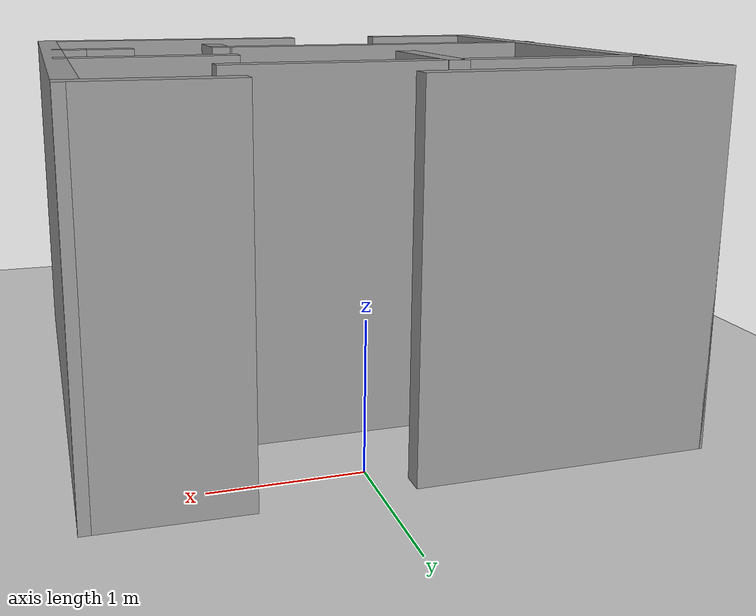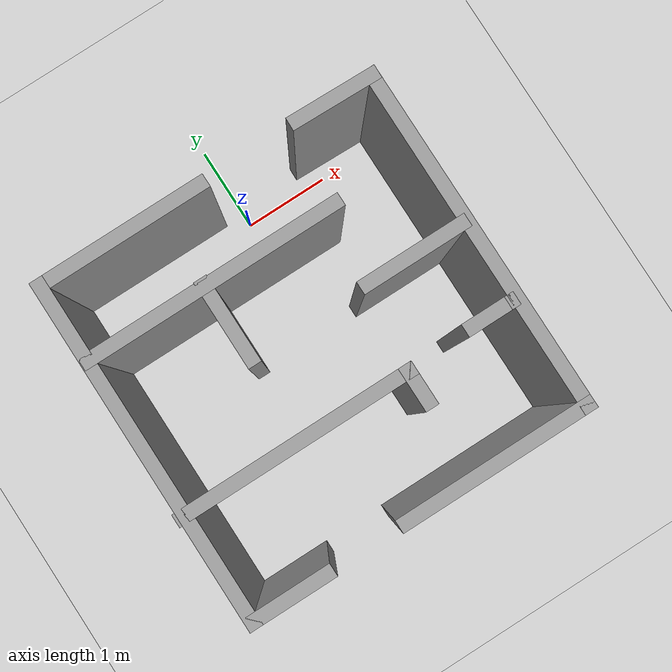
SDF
<sdf version="1.7">
 <world name="default">
  <light name="sun" type="directional">
   <pose>0 0 10 0 -0 0</pose>
   <diffuse>0.8 0.8 0.8 1</diffuse>
   <specular>0.2 0.2 0.2 1</specular>
   <attenuation>
    <range>1000</range>
    <constant>0.9</constant>
    <linear>0.01</linear>
    <quadratic>0.001</quadratic>
   </attenuation>
   <direction>-0.5 0.1 -0.9</direction>
   <spot><inner_angle>0</inner_angle><outer_angle>0</outer_angle><falloff>0</falloff></spot>
  </light>
  <model name="ground_plane">
   <static>1</static>
   <link name="link">
    <collision name="collision">
     <geometry><plane><normal>0 0 1</normal><size>100 100</size></plane></geometry>
     <surface><friction><ode><mu>100</mu><mu2>50</mu2></ode></friction></surface>
    </collision>
    <visual name="visual">
     <cast_shadows>0</cast_shadows>
     <geometry><plane><normal>0 0 1</normal><size>100 100</size></plane></geometry>
     <material>
      <script><uri>file://media/materials/scripts/gazebo.material</uri><name>Gazebo/Grey</name></script>
     </material>
    </visual>
   </link>
  </model>
  <gravity>0 0 -9.8</gravity>
  <magnetic_field>6e-06 2.3e-05 -4.2e-05</magnetic_field>
  <atmosphere type="adiabatic"/>
  <physics type="ode">
   <max_step_size>0.001</max_step_size>
   <real_time_factor>1</real_time_factor>
   <real_time_update_rate>1000</real_time_update_rate>
  </physics>
  <scene><ambient>0.4 0.4 0.4 1</ambient><background>0.7 0.7 0.7 1</background><shadows>1</shadows></scene>
  <audio><device>default</device></audio>
  <spherical_coordinates>
   <surface_model>EARTH_WGS84</surface_model>
   <latitude_deg>0</latitude_deg>
   <longitude_deg>0</longitude_deg>
   <elevation>0</elevation>
   <heading_deg>0</heading_deg>
  </spherical_coordinates>
  <model name="maze">
   <pose>0.254634 -1.22836 0 0 -0 0</pose>
   <link name="Wall_0">
    <collision name="Wall_0_Collision">
     <geometry><box><size>2 0.15 2.5</size></box></geometry>
     <pose>0 0 1.25 0 -0 0</pose>
    </collision>
    <visual name="Wall_0_Visual">
     <pose>0 0 1.25 0 -0 0</pose>
     <geometry><box><size>2 0.15 2.5</size></box></geometry>
     <material>
      <script><uri>file://media/materials/scripts/gazebo.material</uri><name>Gazebo/Grey</name></script>
      <ambient>1 1 1 1</ambient>
     </material>
     <meta><layer>0</layer></meta>
    </visual>
    <pose>-1.4925 1.4425 0 0 -0 0</pose>
   </link>
   <link name="Wall_10">
    <collision name="Wall_10_Collision">
     <geometry><box><size>1 0.15 2.5</size></box></geometry>
     <pose>0 0 1.25 0 -0 0</pose>
    </collision>
    <visual name="Wall_10_Visual">
     <pose>0 0 1.25 0 -0 0</pose>
     <geometry><box><size>1 0.15 2.5</size></box></geometry>
     <material>
      <script><uri>file://media/materials/scripts/gazebo.material</uri><name>Gazebo/Grey</name></script>
      <ambient>1 1 1 1</ambient>
     </material>
     <meta><layer>0</layer></meta>
    </visual>
    <pose>-1.9925 -2.4075 0 0 -0 0</pose>
   </link>
   <link name="Wall_14">
    <collision name="Wall_14_Collision">
     <geometry><box><size>2.25 0.15 2.5</size></box></geometry>
     <pose>0 0 1.25 0 -0 0</pose>
    </collision>
    <visual name="Wall_14_Visual">
     <pose>0 0 1.25 0 -0 0</pose>
     <geometry><box><size>2.25 0.15 2.5</size></box></geometry>
     <material>
      <script><uri>file://media/materials/scripts/gazebo.material</uri><name>Gazebo/Grey</name></script>
      <ambient>1 1 1 1</ambient>
     </material>
     <meta><layer>0</layer></meta>
    </visual>
    <pose>0.3825 -2.4075 0 0 -0 3.14159</pose>
   </link>
   <link name="Wall_16">
    <collision name="Wall_16_Collision">
     <geometry><box><size>3 0.15 2.5</size></box></geometry>
     <pose>0 0 1.25 0 -0 0</pose>
    </collision>
    <visual name="Wall_16_Visual">
     <pose>0 0 1.25 0 -0 0</pose>
     <geometry><box><size>3 0.15 2.5</size></box></geometry>
     <material>
      <script><uri>file://media/materials/scripts/gazebo.material</uri><name>Gazebo/Grey</name></script>
      <ambient>1 1 1 1</ambient>
     </material>
     <meta><layer>0</layer></meta>
    </visual>
    <pose>-0.9825 0.5725 0 0 -0 0</pose>
   </link>
   <link name="Wall_2">
    <collision name="Wall_2_Collision">
     <geometry><box><size>4 0.15 2.5</size></box></geometry>
     <pose>0 0 1.25 0 -0 0</pose>
    </collision>
    <visual name="Wall_2_Visual">
     <pose>0 0 1.25 0 -0 0</pose>
     <geometry><box><size>4 0.15 2.5</size></box></geometry>
     <material>
      <script><uri>file://media/materials/scripts/gazebo.material</uri><name>Gazebo/Grey</name></script>
      <ambient>1 1 1 1</ambient>
     </material>
     <meta><layer>0</layer></meta>
    </visual>
    <pose>-2.4175 -0.4825 0 0 -0 -1.5708</pose>
   </link>
   <link name="Wall_24">
    <collision name="Wall_24_Collision">
     <geometry><box><size>2.75 0.15 2.5</size></box></geometry>
     <pose>0 0 1.25 0 -0 0</pose>
    </collision>
    <visual name="Wall_24_Visual">
     <pose>0 0 1.25 0 -0 0</pose>
     <geometry><box><size>2.75 0.15 2.5</size></box></geometry>
     <material>
      <script><uri>file://media/materials/scripts/gazebo.material</uri><name>Gazebo/Grey</name></script>
      <ambient>1 1 1 1</ambient>
     </material>
     <meta><layer>0</layer></meta>
    </visual>
    <pose>-1.1475 -1.1975 0 0 -0 0</pose>
   </link>
   <link name="Wall_25">
    <collision name="Wall_25_Collision">
     <geometry><box><size>0.5 0.15 2.5</size></box></geometry>
     <pose>0 0 1.25 0 -0 0</pose>
    </collision>
    <visual name="Wall_25_Visual">
     <pose>0 0 1.25 0 -0 0</pose>
     <geometry><box><size>0.5 0.15 2.5</size></box></geometry>
     <material>
      <script><uri>file://media/materials/scripts/gazebo.material</uri><name>Gazebo/Grey</name></script>
      <ambient>1 1 1 1</ambient>
     </material>
     <meta><layer>0</layer></meta>
    </visual>
    <pose>0.1525 -1.3725 0 0 -0 -1.5708</pose>
   </link>
   <link name="Wall_27">
    <collision name="Wall_27_Collision">
     <geometry><box><size>0.5 0.15 2.5</size></box></geometry>
     <pose>0 0 1.25 0 -0 0</pose>
    </collision>
    <visual name="Wall_27_Visual">
     <pose>0 0 1.25 0 -0 0</pose>
     <geometry><box><size>0.5 0.15 2.5</size></box></geometry>
     <material>
      <script><uri>file://media/materials/scripts/gazebo.material</uri><name>Gazebo/Grey</name></script>
      <ambient>1 1 1 1</ambient>
     </material>
     <meta><layer>0</layer></meta>
    </visual>
    <pose>1.0775 -1.1675 0 0 -0 0</pose>
   </link>
   <link name="Wall_29">
    <collision name="Wall_29_Collision">
     <geometry><box><size>0.25 0.15 2.5</size></box></geometry>
     <pose>0 0 1.25 0 -0 0</pose>
    </collision>
    <visual name="Wall_29_Visual">
     <pose>0 0 1.25 0 -0 0</pose>
     <geometry><box><size>0.25 0.15 2.5</size></box></geometry>
     <material>
      <script><uri>file://media/materials/scripts/gazebo.material</uri><name>Gazebo/Grey</name></script>
      <ambient>1 1 1 1</ambient>
     </material>
     <meta><layer>0</layer></meta>
    </visual>
    <pose>1.3025 -1.1675 0 0 -0 0</pose>
   </link>
   <link name="Wall_39">
    <collision name="Wall_39_Collision">
     <geometry><box><size>1 0.15 2.5</size></box></geometry>
     <pose>0 0 1.25 0 -0 0</pose>
    </collision>
    <visual name="Wall_39_Visual">
     <pose>0 0 1.25 0 -0 0</pose>
     <geometry><box><size>1 0.15 2.5</size></box></geometry>
     <material>
      <script><uri>file://media/materials/scripts/gazebo.material</uri><name>Gazebo/Grey</name></script>
      <ambient>1 1 1 1</ambient>
     </material>
     <meta><layer>0</layer></meta>
    </visual>
    <pose>-1.0675 0.1575 0 0 -0 -1.5708</pose>
   </link>
   <link name="Wall_4">
    <collision name="Wall_4_Collision">
     <geometry><box><size>4 0.15 2.5</size></box></geometry>
     <pose>0 0 1.25 0 -0 0</pose>
    </collision>
    <visual name="Wall_4_Visual">
     <pose>0 0 1.25 0 -0 0</pose>
     <geometry><box><size>4 0.15 2.5</size></box></geometry>
     <material>
      <script><uri>file://media/materials/scripts/gazebo.material</uri><name>Gazebo/Grey</name></script>
      <ambient>1 1 1 1</ambient>
     </material>
     <meta><layer>0</layer></meta>
    </visual>
    <pose>1.4325 -0.4825 0 0 -0 1.5708</pose>
   </link>
   <link name="Wall_45">
    <collision name="Wall_45_Collision">
     <geometry><box><size>1.25 0.15 2.5</size></box></geometry>
     <pose>0 0 1.25 0 -0 0</pose>
    </collision>
    <visual name="Wall_45_Visual">
     <pose>0 0 1.25 0 -0 0</pose>
     <geometry><box><size>1.25 0.15 2.5</size></box></geometry>
     <material>
      <script><uri>file://media/materials/scripts/gazebo.material</uri><name>Gazebo/Grey</name></script>
      <ambient>1 1 1 1</ambient>
     </material>
     <meta><layer>0</layer></meta>
    </visual>
    <pose>0.8225 -0.2675 0 0 -0 0</pose>
   </link>
   <link name="Wall_6">
    <collision name="Wall_6_Collision">
     <geometry><box><size>1.02023 0.15 2.5</size></box></geometry>
     <pose>0 0 1.25 0 -0 0</pose>
    </collision>
    <visual name="Wall_6_Visual">
     <pose>0 0 1.25 0 -0 0</pose>
     <geometry><box><size>1.02023 0.15 2.5</size></box></geometry>
     <material>
      <script><uri>file://media/materials/scripts/gazebo.material</uri><name>Gazebo/Grey</name></script>
      <ambient>1 1 1 1</ambient>
     </material>
     <meta><layer>0</layer></meta>
    </visual>
    <pose>0.9975 1.4525 0 0 -0 -0.022984</pose>
   </link>
   <static>1</static>
  </model>
 </world>
</sdf>
